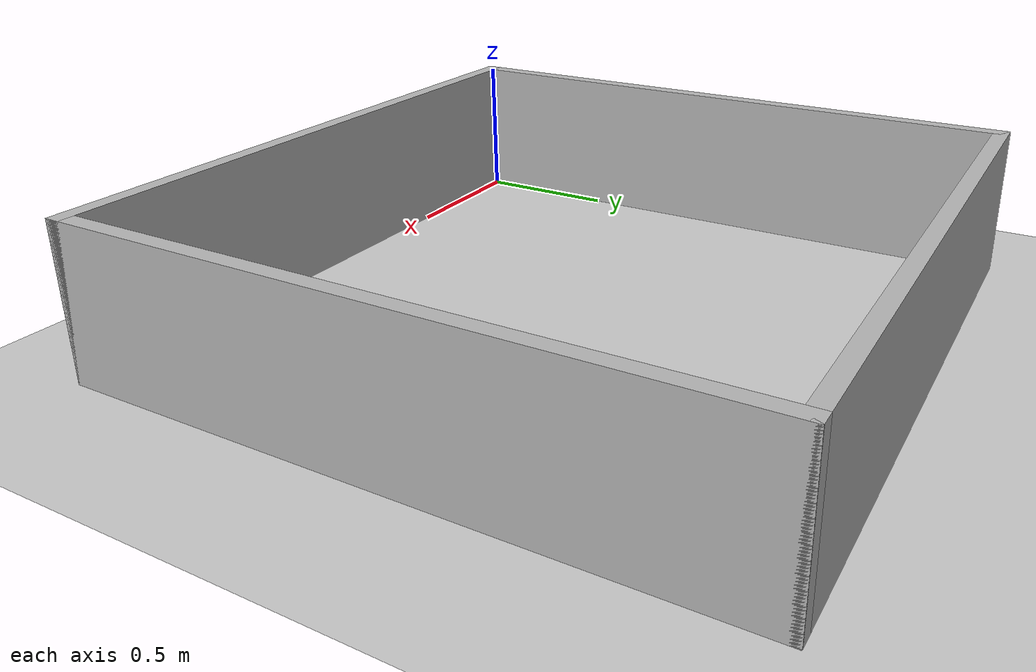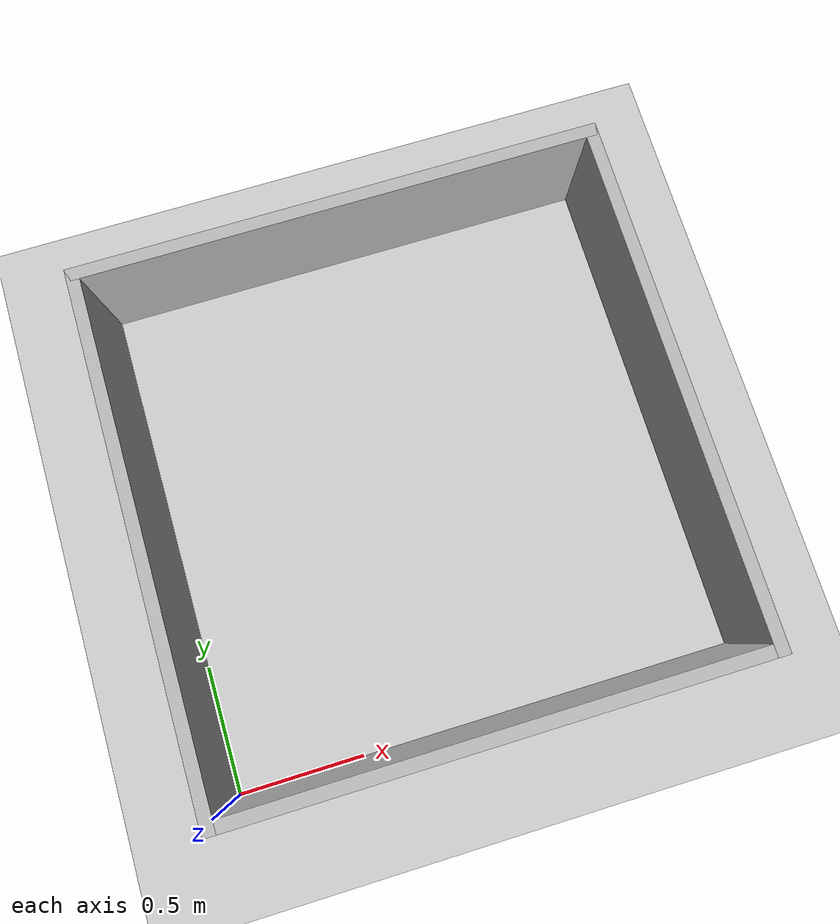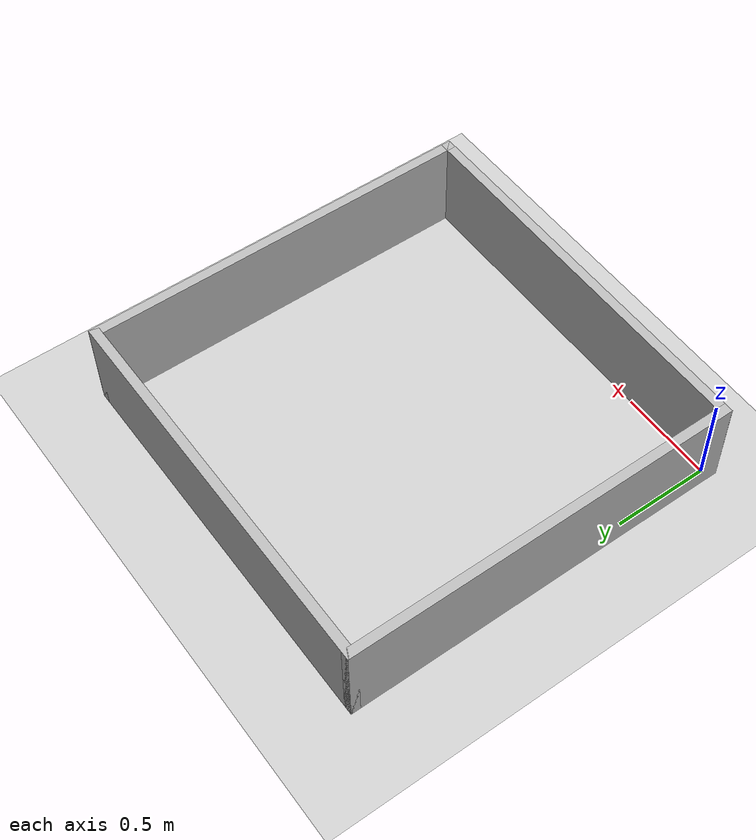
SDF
<?xml version="1.0"?>
<sdf version="1.6">
  <world name="default">
    <include><uri>model://ground_plane</uri></include>
    <include><uri>model://sun</uri></include>

    <model name="box_walls">
      <static>true</static>
      <link name="link">
        <!-- Inside of the box spans (0,0) to (2,2) metres -->
        <collision name="wall_bottom"><pose>1 -0.025 0.25 0 0 0</pose><geometry><box><size>2.1 0.05 0.5</size></box></geometry></collision>
        <visual name="wall_bottom"><pose>1 -0.025 0.25 0 0 0</pose><geometry><box><size>2.1 0.05 0.5</size></box></geometry></visual>

        <collision name="wall_top"><pose>1 2.025 0.25 0 0 0</pose><geometry><box><size>2.1 0.05 0.5</size></box></geometry></collision>
        <visual name="wall_top"><pose>1 2.025 0.25 0 0 0</pose><geometry><box><size>2.1 0.05 0.5</size></box></geometry></visual>

        <collision name="wall_left"><pose>-0.025 1 0.25 0 0 0</pose><geometry><box><size>0.05 2.1 0.5</size></box></geometry></collision>
        <visual name="wall_left"><pose>-0.025 1 0.25 0 0 0</pose><geometry><box><size>0.05 2.1 0.5</size></box></geometry></visual>

        <collision name="wall_right"><pose>2.025 1 0.25 0 0 0</pose><geometry><box><size>0.05 2.1 0.5</size></box></geometry></collision>
        <visual name="wall_right"><pose>2.025 1 0.25 0 0 0</pose><geometry><box><size>0.05 2.1 0.5</size></box></geometry></visual>
      </link>
    </model>
  </world>
</sdf>
